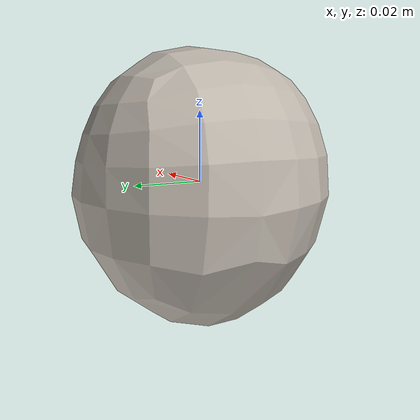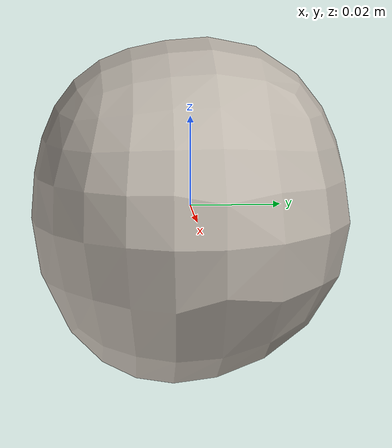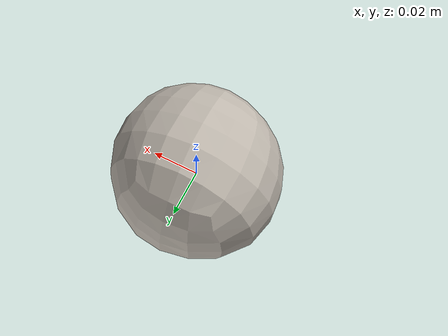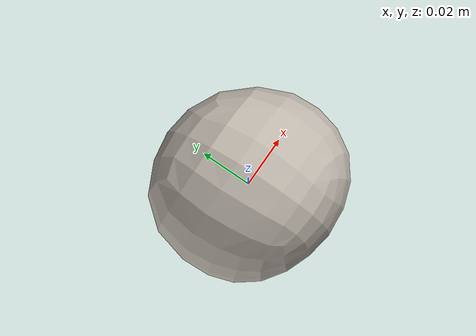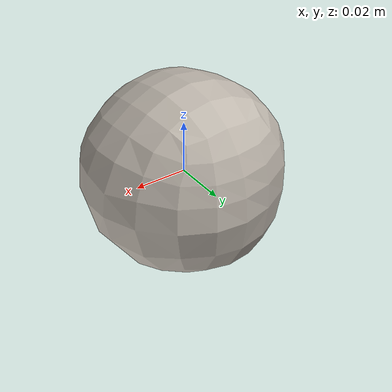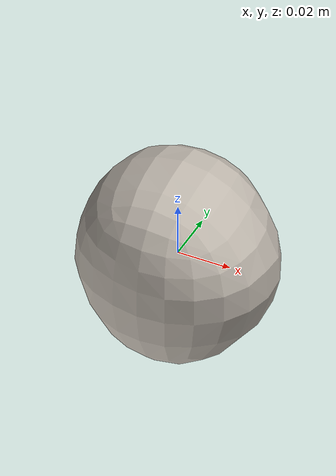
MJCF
<mujoco model="Potato_21">
  <compiler autolimits="true" boundmass="0.01" angle="radian"/>
  <default>
    <default class="/">
      <default class="__VISUAL_MJT__">
        <geom contype="0" conaffinity="0" group="0"/>
      </default>
      <default class="__STRUCTURAL_MJT__">
        <geom contype="8" conaffinity="15" group="4" friction="0.90000000000000002 0.90000000000000002 0.001" solref="0.025000000000000001 1" solimp="0.998 0.998 0.001"/>
      </default>
      <default class="__DYNAMIC_MJT__">
        <geom contype="1" conaffinity="15" group="4" friction="0.90000000000000002 0.90000000000000002 0.001" solref="0.025000000000000001 1" solimp="0.998 0.998 0.001"/>
      </default>
    </default>
  </default>
  <asset>
    <texture name="Potato3_Mat1" type="2d" file="Potato3_AlbedoTransparency.png"/>
    <material name="material_Potato3_Mat1" class="/" texture="Potato3_Mat1" specular="0.5" shininess="0.5" rgba="1 1 1 1"/>
    <mesh name="Potato_21_potato_c1" class="/" file="Potato_21_potato_c1/Potato_21_potato_c1.obj" scale="1 1 1"/>
  </asset>
  <worldbody>
    <body name="Potato_21">
      <joint name="Potato_21_free" class="/" type="free" pos="0 0 0" axis="0 0 1" stiffness="0" range="0 0" armature="0" damping="0.10000000000000001" frictionloss="0"/>
      <body name="Potato_21_potato_c1" pos="0.00040999999999999999 0.00038000000000000002 -0.00149" quat="1 0 0 0">
        <geom name="Potato_21_potato_c1" class="__VISUAL_MJT__" type="mesh" material="material_Potato3_Mat1" shellinertia="true" mesh="Potato_21_potato_c1"/>
        <geom name="Potato_21_PrimitiveCollider_0" class="__DYNAMIC_MJT__" type="capsule" size="0.036792755126953125 0.0016352534294128418" rgba="0 1 0 1" pos="0.000408172607421875 -0.00038397253956645727 0.0014942002017050982" quat="1.4751396609986736e-06 0.99999999999891198 0 0"/>
      </body>
    </body>
  </worldbody>
</mujoco>
